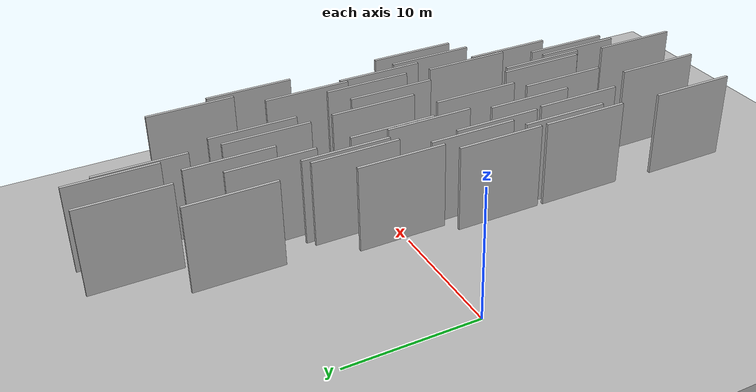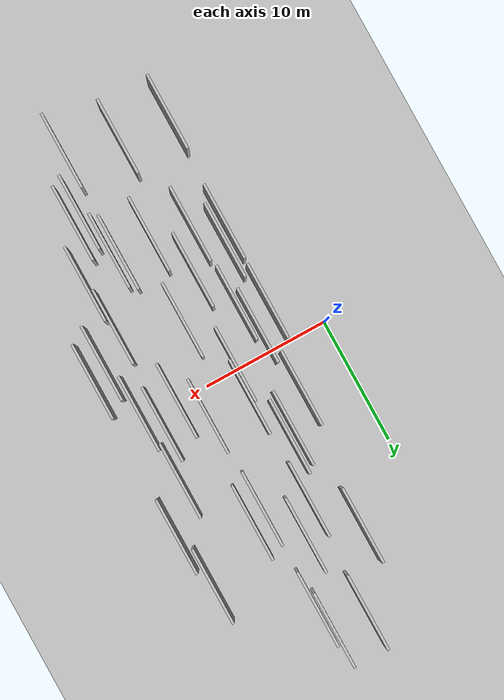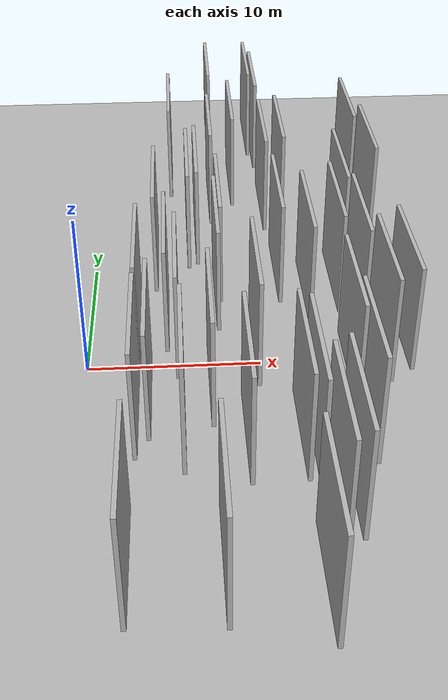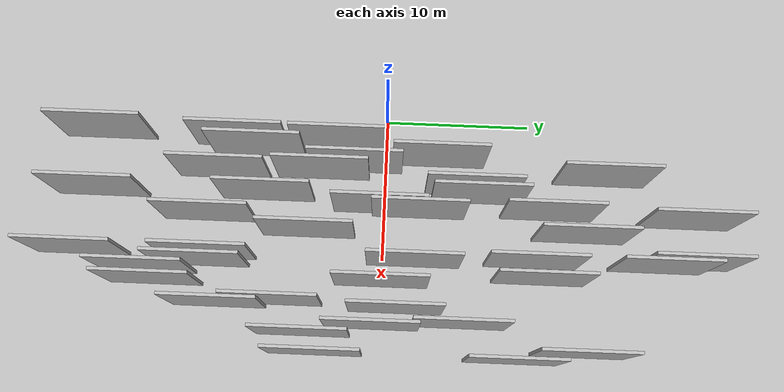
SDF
<?xml version="1.0" encoding="utf-8"?>

<sdf version="1.6">

   <world name="default">

      <gui fullscreen="0">

         <camera name="user_camera">

            <pose>-15 0 4.57585 0 0 0</pose>

            <view_controller>orbit</view_controller>

         </camera>

      </gui>

      <scene>

         <sky>

           <clouds>

             <speed>12</speed>

           </clouds>

         </sky>

         <ambient>0.4 0.4 0.4 1</ambient>

         <background>0.7 0.7 0.7 1</background>

         <shadows>1</shadows>

      </scene>

      <gravity>0 0 -9.8066</gravity>

      <magnetic_field>6e-06 2.3e-05 -4.2e-05</magnetic_field>

      <physics default="0" name="default_physics" type="ode">

         <ode>

            <solver>

               <type>quick</type>

               <iters>10</iters>

               <sor>1.0</sor>

               <use_dynamic_moi_rescaling>0</use_dynamic_moi_rescaling>

            </solver>

            <constraints>

               <cfm>0</cfm>

               <erp>0.2</erp>

               <contact_max_correcting_vel>100</contact_max_correcting_vel>

               <contact_surface_layer>0.001</contact_surface_layer>

            </constraints>

         </ode>

         <max_step_size>0.004</max_step_size>

         <real_time_factor>1</real_time_factor>

         <real_time_update_rate>250</real_time_update_rate>

      </physics>

      <light name="sun" type="directional">

         <cast_shadows>1</cast_shadows>

         <pose>0 0 10 0 0 0</pose>

         <diffuse>0.8 0.8 0.8 1</diffuse>

         <specular>0.2 0.2 0.2 1</specular>

         <attenuation>

            <range>1000</range>

            <constant>0.9</constant>

            <linear>0.01</linear>

            <quadratic>0.001</quadratic>

         </attenuation>

         <direction>-0.5 0.1 -0.9</direction>

      </light>

      <include>

         <name>ground_plane_1</name>

         <uri>model://HANNAS_ground_plane</uri>

         <pose>0 0 0  0 0 0</pose>

      </include>

      <include>

         <name>ground_plane_2</name>

         <uri>model://HANNAS_ground_plane</uri>

         <pose>100 0 0  0 0 0</pose>

      </include>

      <model name="HANNAS_wall_1">

         <static>1</static>

         <pose frame="">7.6778 2.2723 5.0 0.000000 0.000000 1.570796</pose>

         <link name="link">

            <pose frame="">0 0 3.00 0 0 0</pose>

            <collision name="collision">

               <geometry>

                  <box>

                     <size>6.00 0.2 6.00</size>

                  </box>

               </geometry>

               <max_contacts>10</max_contacts>

               <surface>

                  <contact>

                     <ode/>

                  </contact>

                  <bounce/>

                  <friction>

                     <torsional>

                        <ode/>

                     </torsional>

                     <ode/>

                  </friction>

               </surface>

            </collision>

            <visual name="visual">

               <cast_shadows>0</cast_shadows>

               <geometry>

                  <box>

                     <size>6.00 0.2 6.00</size>

                  </box>

               </geometry>

               <material>

                  <script>

                     <uri>model://HANNAS_wall/materials/scripts</uri>

                     <uri>model://HANNAS_wall/materials/textures</uri>

                     <name>vrc/HANNAS_wall</name>

                  </script>

               </material>

            </visual>

            <self_collide>0</self_collide>

            <enable_wind>0</enable_wind>

            <kinematic>0</kinematic>

         </link>

      </model>

      <model name="HANNAS_wall_2">

         <static>1</static>

         <pose frame="">14.8432 5.0702 5.0 0.000000 0.000000 1.570796</pose>

         <link name="link">

            <pose frame="">0 0 3.00 0 0 0</pose>

            <collision name="collision">

               <geometry>

                  <box>

                     <size>6.00 0.2 6.00</size>

                  </box>

               </geometry>

               <max_contacts>10</max_contacts>

               <surface>

                  <contact>

                     <ode/>

                  </contact>

                  <bounce/>

                  <friction>

                     <torsional>

                        <ode/>

                     </torsional>

                     <ode/>

                  </friction>

               </surface>

            </collision>

            <visual name="visual">

               <cast_shadows>0</cast_shadows>

               <geometry>

                  <box>

                     <size>6.00 0.2 6.00</size>

                  </box>

               </geometry>

               <material>

                  <script>

                     <uri>model://HANNAS_wall/materials/scripts</uri>

                     <uri>model://HANNAS_wall/materials/textures</uri>

                     <name>vrc/HANNAS_wall</name>

                  </script>

               </material>

            </visual>

            <self_collide>0</self_collide>

            <enable_wind>0</enable_wind>

            <kinematic>0</kinematic>

         </link>

      </model>

      <model name="HANNAS_wall_3">

         <static>1</static>

         <pose frame="">11.3981 -11.5746 5.0 0.000000 0.000000 1.570796</pose>

         <link name="link">

            <pose frame="">0 0 3.00 0 0 0</pose>

            <collision name="collision">

               <geometry>

                  <box>

                     <size>6.00 0.2 6.00</size>

                  </box>

               </geometry>

               <max_contacts>10</max_contacts>

               <surface>

                  <contact>

                     <ode/>

                  </contact>

                  <bounce/>

                  <friction>

                     <torsional>

                        <ode/>

                     </torsional>

                     <ode/>

                  </friction>

               </surface>

            </collision>

            <visual name="visual">

               <cast_shadows>0</cast_shadows>

               <geometry>

                  <box>

                     <size>6.00 0.2 6.00</size>

                  </box>

               </geometry>

               <material>

                  <script>

                     <uri>model://HANNAS_wall/materials/scripts</uri>

                     <uri>model://HANNAS_wall/materials/textures</uri>

                     <name>vrc/HANNAS_wall</name>

                  </script>

               </material>

            </visual>

            <self_collide>0</self_collide>

            <enable_wind>0</enable_wind>

            <kinematic>0</kinematic>

         </link>

      </model>

      <model name="HANNAS_wall_4">

         <static>1</static>

         <pose frame="">6.5548 6.0789 5.0 0.000000 0.000000 1.570796</pose>

         <link name="link">

            <pose frame="">0 0 3.00 0 0 0</pose>

            <collision name="collision">

               <geometry>

                  <box>

                     <size>6.00 0.2 6.00</size>

                  </box>

               </geometry>

               <max_contacts>10</max_contacts>

               <surface>

                  <contact>

                     <ode/>

                  </contact>

                  <bounce/>

                  <friction>

                     <torsional>

                        <ode/>

                     </torsional>

                     <ode/>

                  </friction>

               </surface>

            </collision>

            <visual name="visual">

               <cast_shadows>0</cast_shadows>

               <geometry>

                  <box>

                     <size>6.00 0.2 6.00</size>

                  </box>

               </geometry>

               <material>

                  <script>

                     <uri>model://HANNAS_wall/materials/scripts</uri>

                     <uri>model://HANNAS_wall/materials/textures</uri>

                     <name>vrc/HANNAS_wall</name>

                  </script>

               </material>

            </visual>

            <self_collide>0</self_collide>

            <enable_wind>0</enable_wind>

            <kinematic>0</kinematic>

         </link>

      </model>

      <model name="HANNAS_wall_5">

         <static>1</static>

         <pose frame="">4.7460 -1.8921 5.0 0.000000 0.000000 1.570796</pose>

         <link name="link">

            <pose frame="">0 0 3.00 0 0 0</pose>

            <collision name="collision">

               <geometry>

                  <box>

                     <size>6.00 0.2 6.00</size>

                  </box>

               </geometry>

               <max_contacts>10</max_contacts>

               <surface>

                  <contact>

                     <ode/>

                  </contact>

                  <bounce/>

                  <friction>

                     <torsional>

                        <ode/>

                     </torsional>

                     <ode/>

                  </friction>

               </surface>

            </collision>

            <visual name="visual">

               <cast_shadows>0</cast_shadows>

               <geometry>

                  <box>

                     <size>6.00 0.2 6.00</size>

                  </box>

               </geometry>

               <material>

                  <script>

                     <uri>model://HANNAS_wall/materials/scripts</uri>

                     <uri>model://HANNAS_wall/materials/textures</uri>

                     <name>vrc/HANNAS_wall</name>

                  </script>

               </material>

            </visual>

            <self_collide>0</self_collide>

            <enable_wind>0</enable_wind>

            <kinematic>0</kinematic>

         </link>

      </model>

      <model name="HANNAS_wall_6">

         <static>1</static>

         <pose frame="">16.8963 -4.0308 5.0 0.000000 0.000000 1.570796</pose>

         <link name="link">

            <pose frame="">0 0 3.00 0 0 0</pose>

            <collision name="collision">

               <geometry>

                  <box>

                     <size>6.00 0.2 6.00</size>

                  </box>

               </geometry>

               <max_contacts>10</max_contacts>

               <surface>

                  <contact>

                     <ode/>

                  </contact>

                  <bounce/>

                  <friction>

                     <torsional>

                        <ode/>

                     </torsional>

                     <ode/>

                  </friction>

               </surface>

            </collision>

            <visual name="visual">

               <cast_shadows>0</cast_shadows>

               <geometry>

                  <box>

                     <size>6.00 0.2 6.00</size>

                  </box>

               </geometry>

               <material>

                  <script>

                     <uri>model://HANNAS_wall/materials/scripts</uri>

                     <uri>model://HANNAS_wall/materials/textures</uri>

                     <name>vrc/HANNAS_wall</name>

                  </script>

               </material>

            </visual>

            <self_collide>0</self_collide>

            <enable_wind>0</enable_wind>

            <kinematic>0</kinematic>

         </link>

      </model>

      <model name="HANNAS_wall_7">

         <static>1</static>

         <pose frame="">3.8668 -8.2815 5.0 0.000000 0.000000 1.570796</pose>

         <link name="link">

            <pose frame="">0 0 3.00 0 0 0</pose>

            <collision name="collision">

               <geometry>

                  <box>

                     <size>6.00 0.2 6.00</size>

                  </box>

               </geometry>

               <max_contacts>10</max_contacts>

               <surface>

                  <contact>

                     <ode/>

                  </contact>

                  <bounce/>

                  <friction>

                     <torsional>

                        <ode/>

                     </torsional>

                     <ode/>

                  </friction>

               </surface>

            </collision>

            <visual name="visual">

               <cast_shadows>0</cast_shadows>

               <geometry>

                  <box>

                     <size>6.00 0.2 6.00</size>

                  </box>

               </geometry>

               <material>

                  <script>

                     <uri>model://HANNAS_wall/materials/scripts</uri>

                     <uri>model://HANNAS_wall/materials/textures</uri>

                     <name>vrc/HANNAS_wall</name>

                  </script>

               </material>

            </visual>

            <self_collide>0</self_collide>

            <enable_wind>0</enable_wind>

            <kinematic>0</kinematic>

         </link>

      </model>

      <model name="HANNAS_wall_8">

         <static>1</static>

         <pose frame="">10.7318 9.6051 5.0 0.000000 0.000000 1.570796</pose>

         <link name="link">

            <pose frame="">0 0 3.00 0 0 0</pose>

            <collision name="collision">

               <geometry>

                  <box>

                     <size>6.00 0.2 6.00</size>

                  </box>

               </geometry>

               <max_contacts>10</max_contacts>

               <surface>

                  <contact>

                     <ode/>

                  </contact>

                  <bounce/>

                  <friction>

                     <torsional>

                        <ode/>

                     </torsional>

                     <ode/>

                  </friction>

               </surface>

            </collision>

            <visual name="visual">

               <cast_shadows>0</cast_shadows>

               <geometry>

                  <box>

                     <size>6.00 0.2 6.00</size>

                  </box>

               </geometry>

               <material>

                  <script>

                     <uri>model://HANNAS_wall/materials/scripts</uri>

                     <uri>model://HANNAS_wall/materials/textures</uri>

                     <name>vrc/HANNAS_wall</name>

                  </script>

               </material>

            </visual>

            <self_collide>0</self_collide>

            <enable_wind>0</enable_wind>

            <kinematic>0</kinematic>

         </link>

      </model>

      <model name="HANNAS_wall_9">

         <static>1</static>

         <pose frame="">7.4577 -0.2457 5.0 0.000000 0.000000 1.570796</pose>

         <link name="link">

            <pose frame="">0 0 3.00 0 0 0</pose>

            <collision name="collision">

               <geometry>

                  <box>

                     <size>6.00 0.2 6.00</size>

                  </box>

               </geometry>

               <max_contacts>10</max_contacts>

               <surface>

                  <contact>

                     <ode/>

                  </contact>

                  <bounce/>

                  <friction>

                     <torsional>

                        <ode/>

                     </torsional>

                     <ode/>

                  </friction>

               </surface>

            </collision>

            <visual name="visual">

               <cast_shadows>0</cast_shadows>

               <geometry>

                  <box>

                     <size>6.00 0.2 6.00</size>

                  </box>

               </geometry>

               <material>

                  <script>

                     <uri>model://HANNAS_wall/materials/scripts</uri>

                     <uri>model://HANNAS_wall/materials/textures</uri>

                     <name>vrc/HANNAS_wall</name>

                  </script>

               </material>

            </visual>

            <self_collide>0</self_collide>

            <enable_wind>0</enable_wind>

            <kinematic>0</kinematic>

         </link>

      </model>

      <model name="HANNAS_wall_10">

         <static>1</static>

         <pose frame="">11.8014 10.1259 5.0 0.000000 0.000000 1.570796</pose>

         <link name="link">

            <pose frame="">0 0 3.00 0 0 0</pose>

            <collision name="collision">

               <geometry>

                  <box>

                     <size>6.00 0.2 6.00</size>

                  </box>

               </geometry>

               <max_contacts>10</max_contacts>

               <surface>

                  <contact>

                     <ode/>

                  </contact>

                  <bounce/>

                  <friction>

                     <torsional>

                        <ode/>

                     </torsional>

                     <ode/>

                  </friction>

               </surface>

            </collision>

            <visual name="visual">

               <cast_shadows>0</cast_shadows>

               <geometry>

                  <box>

                     <size>6.00 0.2 6.00</size>

                  </box>

               </geometry>

               <material>

                  <script>

                     <uri>model://HANNAS_wall/materials/scripts</uri>

                     <uri>model://HANNAS_wall/materials/textures</uri>

                     <name>vrc/HANNAS_wall</name>

                  </script>

               </material>

            </visual>

            <self_collide>0</self_collide>

            <enable_wind>0</enable_wind>

            <kinematic>0</kinematic>

         </link>

      </model>

      <model name="HANNAS_wall_11">

         <static>1</static>

         <pose frame="">12.7144 -14.5248 5.0 0.000000 0.000000 1.570796</pose>

         <link name="link">

            <pose frame="">0 0 3.00 0 0 0</pose>

            <collision name="collision">

               <geometry>

                  <box>

                     <size>6.00 0.2 6.00</size>

                  </box>

               </geometry>

               <max_contacts>10</max_contacts>

               <surface>

                  <contact>

                     <ode/>

                  </contact>

                  <bounce/>

                  <friction>

                     <torsional>

                        <ode/>

                     </torsional>

                     <ode/>

                  </friction>

               </surface>

            </collision>

            <visual name="visual">

               <cast_shadows>0</cast_shadows>

               <geometry>

                  <box>

                     <size>6.00 0.2 6.00</size>

                  </box>

               </geometry>

               <material>

                  <script>

                     <uri>model://HANNAS_wall/materials/scripts</uri>

                     <uri>model://HANNAS_wall/materials/textures</uri>

                     <name>vrc/HANNAS_wall</name>

                  </script>

               </material>

            </visual>

            <self_collide>0</self_collide>

            <enable_wind>0</enable_wind>

            <kinematic>0</kinematic>

         </link>

      </model>

      <model name="HANNAS_wall_12">

         <static>1</static>

         <pose frame="">15.6975 -4.8449 5.0 0.000000 0.000000 1.570796</pose>

         <link name="link">

            <pose frame="">0 0 3.00 0 0 0</pose>

            <collision name="collision">

               <geometry>

                  <box>

                     <size>6.00 0.2 6.00</size>

                  </box>

               </geometry>

               <max_contacts>10</max_contacts>

               <surface>

                  <contact>

                     <ode/>

                  </contact>

                  <bounce/>

                  <friction>

                     <torsional>

                        <ode/>

                     </torsional>

                     <ode/>

                  </friction>

               </surface>

            </collision>

            <visual name="visual">

               <cast_shadows>0</cast_shadows>

               <geometry>

                  <box>

                     <size>6.00 0.2 6.00</size>

                  </box>

               </geometry>

               <material>

                  <script>

                     <uri>model://HANNAS_wall/materials/scripts</uri>

                     <uri>model://HANNAS_wall/materials/textures</uri>

                     <name>vrc/HANNAS_wall</name>

                  </script>

               </material>

            </visual>

            <self_collide>0</self_collide>

            <enable_wind>0</enable_wind>

            <kinematic>0</kinematic>

         </link>

      </model>

      <model name="HANNAS_wall_13">

         <static>1</static>

         <pose frame="">10.4147 19.5446 5.0 0.000000 0.000000 1.570796</pose>

         <link name="link">

            <pose frame="">0 0 3.00 0 0 0</pose>

            <collision name="collision">

               <geometry>

                  <box>

                     <size>6.00 0.2 6.00</size>

                  </box>

               </geometry>

               <max_contacts>10</max_contacts>

               <surface>

                  <contact>

                     <ode/>

                  </contact>

                  <bounce/>

                  <friction>

                     <torsional>

                        <ode/>

                     </torsional>

                     <ode/>

                  </friction>

               </surface>

            </collision>

            <visual name="visual">

               <cast_shadows>0</cast_shadows>

               <geometry>

                  <box>

                     <size>6.00 0.2 6.00</size>

                  </box>

               </geometry>

               <material>

                  <script>

                     <uri>model://HANNAS_wall/materials/scripts</uri>

                     <uri>model://HANNAS_wall/materials/textures</uri>

                     <name>vrc/HANNAS_wall</name>

                  </script>

               </material>

            </visual>

            <self_collide>0</self_collide>

            <enable_wind>0</enable_wind>

            <kinematic>0</kinematic>

         </link>

      </model>

      <model name="HANNAS_wall_14">

         <static>1</static>

         <pose frame="">16.4149 12.7058 5.0 0.000000 0.000000 1.570796</pose>

         <link name="link">

            <pose frame="">0 0 3.00 0 0 0</pose>

            <collision name="collision">

               <geometry>

                  <box>

                     <size>6.00 0.2 6.00</size>

                  </box>

               </geometry>

               <max_contacts>10</max_contacts>

               <surface>

                  <contact>

                     <ode/>

                  </contact>

                  <bounce/>

                  <friction>

                     <torsional>

                        <ode/>

                     </torsional>

                     <ode/>

                  </friction>

               </surface>

            </collision>

            <visual name="visual">

               <cast_shadows>0</cast_shadows>

               <geometry>

                  <box>

                     <size>6.00 0.2 6.00</size>

                  </box>

               </geometry>

               <material>

                  <script>

                     <uri>model://HANNAS_wall/materials/scripts</uri>

                     <uri>model://HANNAS_wall/materials/textures</uri>

                     <name>vrc/HANNAS_wall</name>

                  </script>

               </material>

            </visual>

            <self_collide>0</self_collide>

            <enable_wind>0</enable_wind>

            <kinematic>0</kinematic>

         </link>

      </model>

      <model name="HANNAS_wall_15">

         <static>1</static>

         <pose frame="">8.9345 12.7191 5.0 0.000000 0.000000 1.570796</pose>

         <link name="link">

            <pose frame="">0 0 3.00 0 0 0</pose>

            <collision name="collision">

               <geometry>

                  <box>

                     <size>6.00 0.2 6.00</size>

                  </box>

               </geometry>

               <max_contacts>10</max_contacts>

               <surface>

                  <contact>

                     <ode/>

                  </contact>

                  <bounce/>

                  <friction>

                     <torsional>

                        <ode/>

                     </torsional>

                     <ode/>

                  </friction>

               </surface>

            </collision>

            <visual name="visual">

               <cast_shadows>0</cast_shadows>

               <geometry>

                  <box>

                     <size>6.00 0.2 6.00</size>

                  </box>

               </geometry>

               <material>

                  <script>

                     <uri>model://HANNAS_wall/materials/scripts</uri>

                     <uri>model://HANNAS_wall/materials/textures</uri>

                     <name>vrc/HANNAS_wall</name>

                  </script>

               </material>

            </visual>

            <self_collide>0</self_collide>

            <enable_wind>0</enable_wind>

            <kinematic>0</kinematic>

         </link>

      </model>

      <model name="HANNAS_wall_16">

         <static>1</static>

         <pose frame="">9.2229 -4.7896 5.0 0.000000 0.000000 1.570796</pose>

         <link name="link">

            <pose frame="">0 0 3.00 0 0 0</pose>

            <collision name="collision">

               <geometry>

                  <box>

                     <size>6.00 0.2 6.00</size>

                  </box>

               </geometry>

               <max_contacts>10</max_contacts>

               <surface>

                  <contact>

                     <ode/>

                  </contact>

                  <bounce/>

                  <friction>

                     <torsional>

                        <ode/>

                     </torsional>

                     <ode/>

                  </friction>

               </surface>

            </collision>

            <visual name="visual">

               <cast_shadows>0</cast_shadows>

               <geometry>

                  <box>

                     <size>6.00 0.2 6.00</size>

                  </box>

               </geometry>

               <material>

                  <script>

                     <uri>model://HANNAS_wall/materials/scripts</uri>

                     <uri>model://HANNAS_wall/materials/textures</uri>

                     <name>vrc/HANNAS_wall</name>

                  </script>

               </material>

            </visual>

            <self_collide>0</self_collide>

            <enable_wind>0</enable_wind>

            <kinematic>0</kinematic>

         </link>

      </model>

      <model name="HANNAS_wall_17">

         <static>1</static>

         <pose frame="">5.4607 -10.4741 5.0 0.000000 0.000000 1.570796</pose>

         <link name="link">

            <pose frame="">0 0 3.00 0 0 0</pose>

            <collision name="collision">

               <geometry>

                  <box>

                     <size>6.00 0.2 6.00</size>

                  </box>

               </geometry>

               <max_contacts>10</max_contacts>

               <surface>

                  <contact>

                     <ode/>

                  </contact>

                  <bounce/>

                  <friction>

                     <torsional>

                        <ode/>

                     </torsional>

                     <ode/>

                  </friction>

               </surface>

            </collision>

            <visual name="visual">

               <cast_shadows>0</cast_shadows>

               <geometry>

                  <box>

                     <size>6.00 0.2 6.00</size>

                  </box>

               </geometry>

               <material>

                  <script>

                     <uri>model://HANNAS_wall/materials/scripts</uri>

                     <uri>model://HANNAS_wall/materials/textures</uri>

                     <name>vrc/HANNAS_wall</name>

                  </script>

               </material>

            </visual>

            <self_collide>0</self_collide>

            <enable_wind>0</enable_wind>

            <kinematic>0</kinematic>

         </link>

      </model>

      <model name="HANNAS_wall_18">

         <static>1</static>

         <pose frame="">6.9703 -18.3741 5.0 0.000000 0.000000 1.570796</pose>

         <link name="link">

            <pose frame="">0 0 3.00 0 0 0</pose>

            <collision name="collision">

               <geometry>

                  <box>

                     <size>6.00 0.2 6.00</size>

                  </box>

               </geometry>

               <max_contacts>10</max_contacts>

               <surface>

                  <contact>

                     <ode/>

                  </contact>

                  <bounce/>

                  <friction>

                     <torsional>

                        <ode/>

                     </torsional>

                     <ode/>

                  </friction>

               </surface>

            </collision>

            <visual name="visual">

               <cast_shadows>0</cast_shadows>

               <geometry>

                  <box>

                     <size>6.00 0.2 6.00</size>

                  </box>

               </geometry>

               <material>

                  <script>

                     <uri>model://HANNAS_wall/materials/scripts</uri>

                     <uri>model://HANNAS_wall/materials/textures</uri>

                     <name>vrc/HANNAS_wall</name>

                  </script>

               </material>

            </visual>

            <self_collide>0</self_collide>

            <enable_wind>0</enable_wind>

            <kinematic>0</kinematic>

         </link>

      </model>

      <model name="HANNAS_wall_19">

         <static>1</static>

         <pose frame="">10.7198 17.7000 5.0 0.000000 0.000000 1.570796</pose>

         <link name="link">

            <pose frame="">0 0 3.00 0 0 0</pose>

            <collision name="collision">

               <geometry>

                  <box>

                     <size>6.00 0.2 6.00</size>

                  </box>

               </geometry>

               <max_contacts>10</max_contacts>

               <surface>

                  <contact>

                     <ode/>

                  </contact>

                  <bounce/>

                  <friction>

                     <torsional>

                        <ode/>

                     </torsional>

                     <ode/>

                  </friction>

               </surface>

            </collision>

            <visual name="visual">

               <cast_shadows>0</cast_shadows>

               <geometry>

                  <box>

                     <size>6.00 0.2 6.00</size>

                  </box>

               </geometry>

               <material>

                  <script>

                     <uri>model://HANNAS_wall/materials/scripts</uri>

                     <uri>model://HANNAS_wall/materials/textures</uri>

                     <name>vrc/HANNAS_wall</name>

                  </script>

               </material>

            </visual>

            <self_collide>0</self_collide>

            <enable_wind>0</enable_wind>

            <kinematic>0</kinematic>

         </link>

      </model>

      <model name="HANNAS_wall_20">

         <static>1</static>

         <pose frame="">14.0297 -10.3427 5.0 0.000000 0.000000 1.570796</pose>

         <link name="link">

            <pose frame="">0 0 3.00 0 0 0</pose>

            <collision name="collision">

               <geometry>

                  <box>

                     <size>6.00 0.2 6.00</size>

                  </box>

               </geometry>

               <max_contacts>10</max_contacts>

               <surface>

                  <contact>

                     <ode/>

                  </contact>

                  <bounce/>

                  <friction>

                     <torsional>

                        <ode/>

                     </torsional>

                     <ode/>

                  </friction>

               </surface>

            </collision>

            <visual name="visual">

               <cast_shadows>0</cast_shadows>

               <geometry>

                  <box>

                     <size>6.00 0.2 6.00</size>

                  </box>

               </geometry>

               <material>

                  <script>

                     <uri>model://HANNAS_wall/materials/scripts</uri>

                     <uri>model://HANNAS_wall/materials/textures</uri>

                     <name>vrc/HANNAS_wall</name>

                  </script>

               </material>

            </visual>

            <self_collide>0</self_collide>

            <enable_wind>0</enable_wind>

            <kinematic>0</kinematic>

         </link>

      </model>

      <model name="HANNAS_wall_21">

         <static>1</static>

         <pose frame="">13.7597 -6.7243 5.0 0.000000 0.000000 1.570796</pose>

         <link name="link">

            <pose frame="">0 0 3.00 0 0 0</pose>

            <collision name="collision">

               <geometry>

                  <box>

                     <size>6.00 0.2 6.00</size>

                  </box>

               </geometry>

               <max_contacts>10</max_contacts>

               <surface>

                  <contact>

                     <ode/>

                  </contact>

                  <bounce/>

                  <friction>

                     <torsional>

                        <ode/>

                     </torsional>

                     <ode/>

                  </friction>

               </surface>

            </collision>

            <visual name="visual">

               <cast_shadows>0</cast_shadows>

               <geometry>

                  <box>

                     <size>6.00 0.2 6.00</size>

                  </box>

               </geometry>

               <material>

                  <script>

                     <uri>model://HANNAS_wall/materials/scripts</uri>

                     <uri>model://HANNAS_wall/materials/textures</uri>

                     <name>vrc/HANNAS_wall</name>

                  </script>

               </material>

            </visual>

            <self_collide>0</self_collide>

            <enable_wind>0</enable_wind>

            <kinematic>0</kinematic>

         </link>

      </model>

      <model name="HANNAS_wall_22">

         <static>1</static>

         <pose frame="">7.5126 10.6175 5.0 0.000000 0.000000 1.570796</pose>

         <link name="link">

            <pose frame="">0 0 3.00 0 0 0</pose>

            <collision name="collision">

               <geometry>

                  <box>

                     <size>6.00 0.2 6.00</size>

                  </box>

               </geometry>

               <max_contacts>10</max_contacts>

               <surface>

                  <contact>

                     <ode/>

                  </contact>

                  <bounce/>

                  <friction>

                     <torsional>

                        <ode/>

                     </torsional>

                     <ode/>

                  </friction>

               </surface>

            </collision>

            <visual name="visual">

               <cast_shadows>0</cast_shadows>

               <geometry>

                  <box>

                     <size>6.00 0.2 6.00</size>

                  </box>

               </geometry>

               <material>

                  <script>

                     <uri>model://HANNAS_wall/materials/scripts</uri>

                     <uri>model://HANNAS_wall/materials/textures</uri>

                     <name>vrc/HANNAS_wall</name>

                  </script>

               </material>

            </visual>

            <self_collide>0</self_collide>

            <enable_wind>0</enable_wind>

            <kinematic>0</kinematic>

         </link>

      </model>

      <model name="HANNAS_wall_23">

         <static>1</static>

         <pose frame="">8.3783 -11.2549 5.0 0.000000 0.000000 1.570796</pose>

         <link name="link">

            <pose frame="">0 0 3.00 0 0 0</pose>

            <collision name="collision">

               <geometry>

                  <box>

                     <size>6.00 0.2 6.00</size>

                  </box>

               </geometry>

               <max_contacts>10</max_contacts>

               <surface>

                  <contact>

                     <ode/>

                  </contact>

                  <bounce/>

                  <friction>

                     <torsional>

                        <ode/>

                     </torsional>

                     <ode/>

                  </friction>

               </surface>

            </collision>

            <visual name="visual">

               <cast_shadows>0</cast_shadows>

               <geometry>

                  <box>

                     <size>6.00 0.2 6.00</size>

                  </box>

               </geometry>

               <material>

                  <script>

                     <uri>model://HANNAS_wall/materials/scripts</uri>

                     <uri>model://HANNAS_wall/materials/textures</uri>

                     <name>vrc/HANNAS_wall</name>

                  </script>

               </material>

            </visual>

            <self_collide>0</self_collide>

            <enable_wind>0</enable_wind>

            <kinematic>0</kinematic>

         </link>

      </model>

      <model name="HANNAS_wall_24">

         <static>1</static>

         <pose frame="">10.8865 -11.1747 5.0 0.000000 0.000000 1.570796</pose>

         <link name="link">

            <pose frame="">0 0 3.00 0 0 0</pose>

            <collision name="collision">

               <geometry>

                  <box>

                     <size>6.00 0.2 6.00</size>

                  </box>

               </geometry>

               <max_contacts>10</max_contacts>

               <surface>

                  <contact>

                     <ode/>

                  </contact>

                  <bounce/>

                  <friction>

                     <torsional>

                        <ode/>

                     </torsional>

                     <ode/>

                  </friction>

               </surface>

            </collision>

            <visual name="visual">

               <cast_shadows>0</cast_shadows>

               <geometry>

                  <box>

                     <size>6.00 0.2 6.00</size>

                  </box>

               </geometry>

               <material>

                  <script>

                     <uri>model://HANNAS_wall/materials/scripts</uri>

                     <uri>model://HANNAS_wall/materials/textures</uri>

                     <name>vrc/HANNAS_wall</name>

                  </script>

               </material>

            </visual>

            <self_collide>0</self_collide>

            <enable_wind>0</enable_wind>

            <kinematic>0</kinematic>

         </link>

      </model>

      <model name="HANNAS_wall_25">

         <static>1</static>

         <pose frame="">5.2769 -4.0144 5.0 0.000000 0.000000 1.570796</pose>

         <link name="link">

            <pose frame="">0 0 3.00 0 0 0</pose>

            <collision name="collision">

               <geometry>

                  <box>

                     <size>6.00 0.2 6.00</size>

                  </box>

               </geometry>

               <max_contacts>10</max_contacts>

               <surface>

                  <contact>

                     <ode/>

                  </contact>

                  <bounce/>

                  <friction>

                     <torsional>

                        <ode/>

                     </torsional>

                     <ode/>

                  </friction>

               </surface>

            </collision>

            <visual name="visual">

               <cast_shadows>0</cast_shadows>

               <geometry>

                  <box>

                     <size>6.00 0.2 6.00</size>

                  </box>

               </geometry>

               <material>

                  <script>

                     <uri>model://HANNAS_wall/materials/scripts</uri>

                     <uri>model://HANNAS_wall/materials/textures</uri>

                     <name>vrc/HANNAS_wall</name>

                  </script>

               </material>

            </visual>

            <self_collide>0</self_collide>

            <enable_wind>0</enable_wind>

            <kinematic>0</kinematic>

         </link>

      </model>

      <model name="HANNAS_wall_26">

         <static>1</static>

         <pose frame="">3.2855 -3.0692 5.0 0.000000 0.000000 1.570796</pose>

         <link name="link">

            <pose frame="">0 0 3.00 0 0 0</pose>

            <collision name="collision">

               <geometry>

                  <box>

                     <size>6.00 0.2 6.00</size>

                  </box>

               </geometry>

               <max_contacts>10</max_contacts>

               <surface>

                  <contact>

                     <ode/>

                  </contact>

                  <bounce/>

                  <friction>

                     <torsional>

                        <ode/>

                     </torsional>

                     <ode/>

                  </friction>

               </surface>

            </collision>

            <visual name="visual">

               <cast_shadows>0</cast_shadows>

               <geometry>

                  <box>

                     <size>6.00 0.2 6.00</size>

                  </box>

               </geometry>

               <material>

                  <script>

                     <uri>model://HANNAS_wall/materials/scripts</uri>

                     <uri>model://HANNAS_wall/materials/textures</uri>

                     <name>vrc/HANNAS_wall</name>

                  </script>

               </material>

            </visual>

            <self_collide>0</self_collide>

            <enable_wind>0</enable_wind>

            <kinematic>0</kinematic>

         </link>

      </model>

      <model name="HANNAS_wall_27">

         <static>1</static>

         <pose frame="">3.0458 -18.2056 5.0 0.000000 0.000000 1.570796</pose>

         <link name="link">

            <pose frame="">0 0 3.00 0 0 0</pose>

            <collision name="collision">

               <geometry>

                  <box>

                     <size>6.00 0.2 6.00</size>

                  </box>

               </geometry>

               <max_contacts>10</max_contacts>

               <surface>

                  <contact>

                     <ode/>

                  </contact>

                  <bounce/>

                  <friction>

                     <torsional>

                        <ode/>

                     </torsional>

                     <ode/>

                  </friction>

               </surface>

            </collision>

            <visual name="visual">

               <cast_shadows>0</cast_shadows>

               <geometry>

                  <box>

                     <size>6.00 0.2 6.00</size>

                  </box>

               </geometry>

               <material>

                  <script>

                     <uri>model://HANNAS_wall/materials/scripts</uri>

                     <uri>model://HANNAS_wall/materials/textures</uri>

                     <name>vrc/HANNAS_wall</name>

                  </script>

               </material>

            </visual>

            <self_collide>0</self_collide>

            <enable_wind>0</enable_wind>

            <kinematic>0</kinematic>

         </link>

      </model>

      <model name="HANNAS_wall_28">

         <static>1</static>

         <pose frame="">10.9317 2.0300 5.0 0.000000 0.000000 1.570796</pose>

         <link name="link">

            <pose frame="">0 0 3.00 0 0 0</pose>

            <collision name="collision">

               <geometry>

                  <box>

                     <size>6.00 0.2 6.00</size>

                  </box>

               </geometry>

               <max_contacts>10</max_contacts>

               <surface>

                  <contact>

                     <ode/>

                  </contact>

                  <bounce/>

                  <friction>

                     <torsional>

                        <ode/>

                     </torsional>

                     <ode/>

                  </friction>

               </surface>

            </collision>

            <visual name="visual">

               <cast_shadows>0</cast_shadows>

               <geometry>

                  <box>

                     <size>6.00 0.2 6.00</size>

                  </box>

               </geometry>

               <material>

                  <script>

                     <uri>model://HANNAS_wall/materials/scripts</uri>

                     <uri>model://HANNAS_wall/materials/textures</uri>

                     <name>vrc/HANNAS_wall</name>

                  </script>

               </material>

            </visual>

            <self_collide>0</self_collide>

            <enable_wind>0</enable_wind>

            <kinematic>0</kinematic>

         </link>

      </model>

      <model name="HANNAS_wall_29">

         <static>1</static>

         <pose frame="">7.7321 19.5969 5.0 0.000000 0.000000 1.570796</pose>

         <link name="link">

            <pose frame="">0 0 3.00 0 0 0</pose>

            <collision name="collision">

               <geometry>

                  <box>

                     <size>6.00 0.2 6.00</size>

                  </box>

               </geometry>

               <max_contacts>10</max_contacts>

               <surface>

                  <contact>

                     <ode/>

                  </contact>

                  <bounce/>

                  <friction>

                     <torsional>

                        <ode/>

                     </torsional>

                     <ode/>

                  </friction>

               </surface>

            </collision>

            <visual name="visual">

               <cast_shadows>0</cast_shadows>

               <geometry>

                  <box>

                     <size>6.00 0.2 6.00</size>

                  </box>

               </geometry>

               <material>

                  <script>

                     <uri>model://HANNAS_wall/materials/scripts</uri>

                     <uri>model://HANNAS_wall/materials/textures</uri>

                     <name>vrc/HANNAS_wall</name>

                  </script>

               </material>

            </visual>

            <self_collide>0</self_collide>

            <enable_wind>0</enable_wind>

            <kinematic>0</kinematic>

         </link>

      </model>

      <model name="HANNAS_wall_30">

         <static>1</static>

         <pose frame="">5.0770 14.0515 5.0 0.000000 0.000000 1.570796</pose>

         <link name="link">

            <pose frame="">0 0 3.00 0 0 0</pose>

            <collision name="collision">

               <geometry>

                  <box>

                     <size>6.00 0.2 6.00</size>

                  </box>

               </geometry>

               <max_contacts>10</max_contacts>

               <surface>

                  <contact>

                     <ode/>

                  </contact>

                  <bounce/>

                  <friction>

                     <torsional>

                        <ode/>

                     </torsional>

                     <ode/>

                  </friction>

               </surface>

            </collision>

            <visual name="visual">

               <cast_shadows>0</cast_shadows>

               <geometry>

                  <box>

                     <size>6.00 0.2 6.00</size>

                  </box>

               </geometry>

               <material>

                  <script>

                     <uri>model://HANNAS_wall/materials/scripts</uri>

                     <uri>model://HANNAS_wall/materials/textures</uri>

                     <name>vrc/HANNAS_wall</name>

                  </script>

               </material>

            </visual>

            <self_collide>0</self_collide>

            <enable_wind>0</enable_wind>

            <kinematic>0</kinematic>

         </link>

      </model>

      <model name="HANNAS_wall_31">

         <static>1</static>

         <pose frame="">14.0205 0.9720 5.0 0.000000 0.000000 1.570796</pose>

         <link name="link">

            <pose frame="">0 0 3.00 0 0 0</pose>

            <collision name="collision">

               <geometry>

                  <box>

                     <size>6.00 0.2 6.00</size>

                  </box>

               </geometry>

               <max_contacts>10</max_contacts>

               <surface>

                  <contact>

                     <ode/>

                  </contact>

                  <bounce/>

                  <friction>

                     <torsional>

                        <ode/>

                     </torsional>

                     <ode/>

                  </friction>

               </surface>

            </collision>

            <visual name="visual">

               <cast_shadows>0</cast_shadows>

               <geometry>

                  <box>

                     <size>6.00 0.2 6.00</size>

                  </box>

               </geometry>

               <material>

                  <script>

                     <uri>model://HANNAS_wall/materials/scripts</uri>

                     <uri>model://HANNAS_wall/materials/textures</uri>

                     <name>vrc/HANNAS_wall</name>

                  </script>

               </material>

            </visual>

            <self_collide>0</self_collide>

            <enable_wind>0</enable_wind>

            <kinematic>0</kinematic>

         </link>

      </model>

      <model name="HANNAS_wall_32">

         <static>1</static>

         <pose frame="">3.2637 -9.4619 5.0 0.000000 0.000000 1.570796</pose>

         <link name="link">

            <pose frame="">0 0 3.00 0 0 0</pose>

            <collision name="collision">

               <geometry>

                  <box>

                     <size>6.00 0.2 6.00</size>

                  </box>

               </geometry>

               <max_contacts>10</max_contacts>

               <surface>

                  <contact>

                     <ode/>

                  </contact>

                  <bounce/>

                  <friction>

                     <torsional>

                        <ode/>

                     </torsional>

                     <ode/>

                  </friction>

               </surface>

            </collision>

            <visual name="visual">

               <cast_shadows>0</cast_shadows>

               <geometry>

                  <box>

                     <size>6.00 0.2 6.00</size>

                  </box>

               </geometry>

               <material>

                  <script>

                     <uri>model://HANNAS_wall/materials/scripts</uri>

                     <uri>model://HANNAS_wall/materials/textures</uri>

                     <name>vrc/HANNAS_wall</name>

                  </script>

               </material>

            </visual>

            <self_collide>0</self_collide>

            <enable_wind>0</enable_wind>

            <kinematic>0</kinematic>

         </link>

      </model>

      <model name="HANNAS_wall_33">

         <static>1</static>

         <pose frame="">16.9803 8.4216 5.0 0.000000 0.000000 1.570796</pose>

         <link name="link">

            <pose frame="">0 0 3.00 0 0 0</pose>

            <collision name="collision">

               <geometry>

                  <box>

                     <size>6.00 0.2 6.00</size>

                  </box>

               </geometry>

               <max_contacts>10</max_contacts>

               <surface>

                  <contact>

                     <ode/>

                  </contact>

                  <bounce/>

                  <friction>

                     <torsional>

                        <ode/>

                     </torsional>

                     <ode/>

                  </friction>

               </surface>

            </collision>

            <visual name="visual">

               <cast_shadows>0</cast_shadows>

               <geometry>

                  <box>

                     <size>6.00 0.2 6.00</size>

                  </box>

               </geometry>

               <material>

                  <script>

                     <uri>model://HANNAS_wall/materials/scripts</uri>

                     <uri>model://HANNAS_wall/materials/textures</uri>

                     <name>vrc/HANNAS_wall</name>

                  </script>

               </material>

            </visual>

            <self_collide>0</self_collide>

            <enable_wind>0</enable_wind>

            <kinematic>0</kinematic>

         </link>

      </model>

      <model name="HANNAS_wall_34">

         <static>1</static>

         <pose frame="">6.0533 5.6645 5.0 0.000000 0.000000 1.570796</pose>

         <link name="link">

            <pose frame="">0 0 3.00 0 0 0</pose>

            <collision name="collision">

               <geometry>

                  <box>

                     <size>6.00 0.2 6.00</size>

                  </box>

               </geometry>

               <max_contacts>10</max_contacts>

               <surface>

                  <contact>

                     <ode/>

                  </contact>

                  <bounce/>

                  <friction>

                     <torsional>

                        <ode/>

                     </torsional>

                     <ode/>

                  </friction>

               </surface>

            </collision>

            <visual name="visual">

               <cast_shadows>0</cast_shadows>

               <geometry>

                  <box>

                     <size>6.00 0.2 6.00</size>

                  </box>

               </geometry>

               <material>

                  <script>

                     <uri>model://HANNAS_wall/materials/scripts</uri>

                     <uri>model://HANNAS_wall/materials/textures</uri>

                     <name>vrc/HANNAS_wall</name>

                  </script>

               </material>

            </visual>

            <self_collide>0</self_collide>

            <enable_wind>0</enable_wind>

            <kinematic>0</kinematic>

         </link>

      </model>

      <model name="HANNAS_wall_35">

         <static>1</static>

         <pose frame="">4.1713 3.4843 5.0 0.000000 0.000000 1.570796</pose>

         <link name="link">

            <pose frame="">0 0 3.00 0 0 0</pose>

            <collision name="collision">

               <geometry>

                  <box>

                     <size>6.00 0.2 6.00</size>

                  </box>

               </geometry>

               <max_contacts>10</max_contacts>

               <surface>

                  <contact>

                     <ode/>

                  </contact>

                  <bounce/>

                  <friction>

                     <torsional>

                        <ode/>

                     </torsional>

                     <ode/>

                  </friction>

               </surface>

            </collision>

            <visual name="visual">

               <cast_shadows>0</cast_shadows>

               <geometry>

                  <box>

                     <size>6.00 0.2 6.00</size>

                  </box>

               </geometry>

               <material>

                  <script>

                     <uri>model://HANNAS_wall/materials/scripts</uri>

                     <uri>model://HANNAS_wall/materials/textures</uri>

                     <name>vrc/HANNAS_wall</name>

                  </script>

               </material>

            </visual>

            <self_collide>0</self_collide>

            <enable_wind>0</enable_wind>

            <kinematic>0</kinematic>

         </link>

      </model>

      <model name="HANNAS_wall_36">

         <static>1</static>

         <pose frame="">11.9497 -14.9938 5.0 0.000000 0.000000 1.570796</pose>

         <link name="link">

            <pose frame="">0 0 3.00 0 0 0</pose>

            <collision name="collision">

               <geometry>

                  <box>

                     <size>6.00 0.2 6.00</size>

                  </box>

               </geometry>

               <max_contacts>10</max_contacts>

               <surface>

                  <contact>

                     <ode/>

                  </contact>

                  <bounce/>

                  <friction>

                     <torsional>

                        <ode/>

                     </torsional>

                     <ode/>

                  </friction>

               </surface>

            </collision>

            <visual name="visual">

               <cast_shadows>0</cast_shadows>

               <geometry>

                  <box>

                     <size>6.00 0.2 6.00</size>

                  </box>

               </geometry>

               <material>

                  <script>

                     <uri>model://HANNAS_wall/materials/scripts</uri>

                     <uri>model://HANNAS_wall/materials/textures</uri>

                     <name>vrc/HANNAS_wall</name>

                  </script>

               </material>

            </visual>

            <self_collide>0</self_collide>

            <enable_wind>0</enable_wind>

            <kinematic>0</kinematic>

         </link>

      </model>

      <model name="HANNAS_wall_37">

         <static>1</static>

         <pose frame="">15.1137 -0.4886 5.0 0.000000 0.000000 1.570796</pose>

         <link name="link">

            <pose frame="">0 0 3.00 0 0 0</pose>

            <collision name="collision">

               <geometry>

                  <box>

                     <size>6.00 0.2 6.00</size>

                  </box>

               </geometry>

               <max_contacts>10</max_contacts>

               <surface>

                  <contact>

                     <ode/>

                  </contact>

                  <bounce/>

                  <friction>

                     <torsional>

                        <ode/>

                     </torsional>

                     <ode/>

                  </friction>

               </surface>

            </collision>

            <visual name="visual">

               <cast_shadows>0</cast_shadows>

               <geometry>

                  <box>

                     <size>6.00 0.2 6.00</size>

                  </box>

               </geometry>

               <material>

                  <script>

                     <uri>model://HANNAS_wall/materials/scripts</uri>

                     <uri>model://HANNAS_wall/materials/textures</uri>

                     <name>vrc/HANNAS_wall</name>

                  </script>

               </material>

            </visual>

            <self_collide>0</self_collide>

            <enable_wind>0</enable_wind>

            <kinematic>0</kinematic>

         </link>

      </model>

      <model name="HANNAS_wall_38">

         <static>1</static>

         <pose frame="">6.8642 -7.5411 5.0 0.000000 0.000000 1.570796</pose>

         <link name="link">

            <pose frame="">0 0 3.00 0 0 0</pose>

            <collision name="collision">

               <geometry>

                  <box>

                     <size>6.00 0.2 6.00</size>

                  </box>

               </geometry>

               <max_contacts>10</max_contacts>

               <surface>

                  <contact>

                     <ode/>

                  </contact>

                  <bounce/>

                  <friction>

                     <torsional>

                        <ode/>

                     </torsional>

                     <ode/>

                  </friction>

               </surface>

            </collision>

            <visual name="visual">

               <cast_shadows>0</cast_shadows>

               <geometry>

                  <box>

                     <size>6.00 0.2 6.00</size>

                  </box>

               </geometry>

               <material>

                  <script>

                     <uri>model://HANNAS_wall/materials/scripts</uri>

                     <uri>model://HANNAS_wall/materials/textures</uri>

                     <name>vrc/HANNAS_wall</name>

                  </script>

               </material>

            </visual>

            <self_collide>0</self_collide>

            <enable_wind>0</enable_wind>

            <kinematic>0</kinematic>

         </link>

      </model>

      <model name="HANNAS_wall_39">

         <static>1</static>

         <pose frame="">12.3319 0.0039 5.0 0.000000 0.000000 1.570796</pose>

         <link name="link">

            <pose frame="">0 0 3.00 0 0 0</pose>

            <collision name="collision">

               <geometry>

                  <box>

                     <size>6.00 0.2 6.00</size>

                  </box>

               </geometry>

               <max_contacts>10</max_contacts>

               <surface>

                  <contact>

                     <ode/>

                  </contact>

                  <bounce/>

                  <friction>

                     <torsional>

                        <ode/>

                     </torsional>

                     <ode/>

                  </friction>

               </surface>

            </collision>

            <visual name="visual">

               <cast_shadows>0</cast_shadows>

               <geometry>

                  <box>

                     <size>6.00 0.2 6.00</size>

                  </box>

               </geometry>

               <material>

                  <script>

                     <uri>model://HANNAS_wall/materials/scripts</uri>

                     <uri>model://HANNAS_wall/materials/textures</uri>

                     <name>vrc/HANNAS_wall</name>

                  </script>

               </material>

            </visual>

            <self_collide>0</self_collide>

            <enable_wind>0</enable_wind>

            <kinematic>0</kinematic>

         </link>

      </model>

      <model name="HANNAS_wall_40">

         <static>1</static>

         <pose frame="">10.9229 -19.3911 5.0 0.000000 0.000000 1.570796</pose>

         <link name="link">

            <pose frame="">0 0 3.00 0 0 0</pose>

            <collision name="collision">

               <geometry>

                  <box>

                     <size>6.00 0.2 6.00</size>

                  </box>

               </geometry>

               <max_contacts>10</max_contacts>

               <surface>

                  <contact>

                     <ode/>

                  </contact>

                  <bounce/>

                  <friction>

                     <torsional>

                        <ode/>

                     </torsional>

                     <ode/>

                  </friction>

               </surface>

            </collision>

            <visual name="visual">

               <cast_shadows>0</cast_shadows>

               <geometry>

                  <box>

                     <size>6.00 0.2 6.00</size>

                  </box>

               </geometry>

               <material>

                  <script>

                     <uri>model://HANNAS_wall/materials/scripts</uri>

                     <uri>model://HANNAS_wall/materials/textures</uri>

                     <name>vrc/HANNAS_wall</name>

                  </script>

               </material>

            </visual>

            <self_collide>0</self_collide>

            <enable_wind>0</enable_wind>

            <kinematic>0</kinematic>

         </link>

      </model>

   </world>

</sdf>
